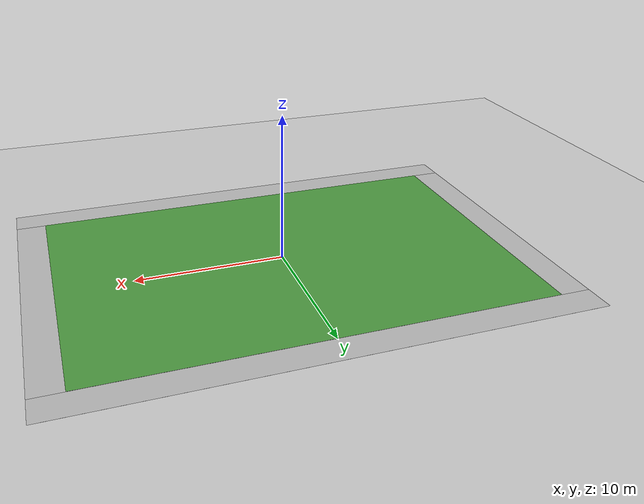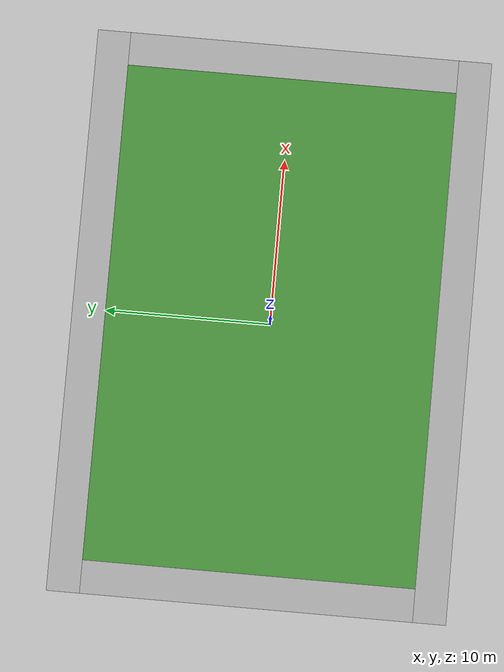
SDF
<sdf version="1.6">
 <world name="default">
  <light name="sun" type="directional">
   <pose>0 0 10 0 -0 0</pose>
   <diffuse>0.8 0.8 0.8 1</diffuse>
   <specular>0.2 0.2 0.2 1</specular>
   <attenuation>
    <range>1000</range>
    <constant>0.9</constant>
    <linear>0.01</linear>
    <quadratic>0.001</quadratic>
   </attenuation>
   <direction>-0.5 0.1 -0.9</direction>
  </light>
  <model name="ground_plane">
   <static>1</static>
   <link name="link">
    <collision name="collision">
     <geometry><plane><normal>0 0 1</normal><size>100 100</size></plane></geometry>
     <surface>
      <contact><collide_bitmask>65535</collide_bitmask></contact>
      <friction><ode><mu>100</mu><mu2>50</mu2></ode></friction>
     </surface>
    </collision>
    <visual name="visual">
     <cast_shadows>0</cast_shadows>
     <geometry><plane><normal>0 0 1</normal><size>100 100</size></plane></geometry>
     <material>
      <script><uri>file://media/materials/scripts/gazebo.material</uri><name>Gazebo/Grey</name></script>
     </material>
    </visual>
   </link>
  </model>
  <gravity>0 0 -9.8</gravity>
  <magnetic_field>6e-06 2.3e-05 -4.2e-05</magnetic_field>
  <atmosphere type="adiabatic"/>
  <physics name="default_physics" default="0" type="ode">
   <max_step_size>0.001</max_step_size>
   <real_time_factor>1</real_time_factor>
   <real_time_update_rate>1000</real_time_update_rate>
  </physics>
  <scene><ambient>0.4 0.4 0.4 1</ambient><background>0.7 0.7 0.7 1</background><shadows>1</shadows></scene>
  <spherical_coordinates>
   <surface_model>EARTH_WGS84</surface_model>
   <latitude_deg>0</latitude_deg>
   <longitude_deg>0</longitude_deg>
   <elevation>0</elevation>
   <heading_deg>0</heading_deg>
  </spherical_coordinates>
  <model name="robocup_3d_field_with_apriltag0_3">
   <static>1</static>
   <link name="robocup_3d_field::field">
    <pose>0 0 0.01 0 -0 0</pose>
    <collision name="collision">
     <geometry><plane><normal>0 0 1</normal><size>30 20</size></plane></geometry>
     <surface><friction><ode><mu>100</mu><mu2>50</mu2></ode></friction></surface>
    </collision>
    <visual name="base1">
     <pose>0 11 0.001 0 -0 0</pose>
     <cast_shadows>0</cast_shadows>
     <geometry><plane><normal>0 0 1</normal><size>34 2</size></plane></geometry>
     <material>
      <script>
       <uri>model://robocup_3Dsim_field/materials/scripts/</uri>
       <uri>model://robocup_3Dsim_field/materials/textures/</uri>
       <name>RoboCup/FieldBorder</name>
      </script>
     </material>
    </visual>
    <visual name="base2">
     <pose>0 -11 0.001 0 -0 0</pose>
     <cast_shadows>0</cast_shadows>
     <geometry><plane><normal>0 0 1</normal><size>34 2</size></plane></geometry>
     <material>
      <script>
       <uri>model://robocup_3Dsim_field/materials/scripts/</uri>
       <uri>model://robocup_3Dsim_field/materials/textures/</uri>
       <name>RoboCup/FieldBorder</name>
      </script>
     </material>
    </visual>
    <visual name="base3">
     <pose>16 0 0.001 0 -0 0</pose>
     <cast_shadows>0</cast_shadows>
     <geometry><plane><normal>0 0 1</normal><size>2 20</size></plane></geometry>
     <material>
      <script>
       <uri>model://robocup_3Dsim_field/materials/scripts/</uri>
       <uri>model://robocup_3Dsim_field/materials/textures/</uri>
       <name>RoboCup/FieldBorder</name>
      </script>
     </material>
    </visual>
    <visual name="base4">
     <pose>-16 0 0.001 0 -0 0</pose>
     <cast_shadows>0</cast_shadows>
     <geometry><plane><normal>0 0 1</normal><size>2 20</size></plane></geometry>
     <material>
      <script>
       <uri>model://robocup_3Dsim_field/materials/scripts/</uri>
       <uri>model://robocup_3Dsim_field/materials/textures/</uri>
       <name>RoboCup/FieldBorder</name>
      </script>
     </material>
    </visual>
    <visual name="carpet">
     <cast_shadows>0</cast_shadows>
     <geometry><plane><normal>0 0 1</normal><size>30 20</size></plane></geometry>
     <material>
      <script>
       <uri>model://robocup_3Dsim_field/materials/scripts/</uri>
       <uri>model://robocup_3Dsim_field/materials/textures/</uri>
       <name>RoboCup/Grass</name>
      </script>
     </material>
    </visual>
   </link>
   <link name="apriltag0::link">
    <pose>0 0 0.01 0 -0 0</pose>
    <inertial>
     <mass>0.39</mass>
     <inertia><ixx>0.00058</ixx><ixy>0</ixy><ixz>0</ixz><iyy>0.00058</iyy><iyz>0</iyz><izz>0.00019</izz></inertia>
    </inertial>
    <collision name="collision"><geometry><box><size>0.62112 0.62112 0.01</size></box></geometry></collision>
    <visual name="visual">
     <geometry><box><size>0.62112 0.62112 0.01</size></box></geometry>
     <material>
      <script>
       <uri>model://apriltag0/materials/scripts</uri>
       <uri>model://apriltag0/materials/textures</uri>
       <name>apriltag0/Diffuse</name>
      </script>
     </material>
    </visual>
   </link>
  </model>
 </world>
</sdf>
